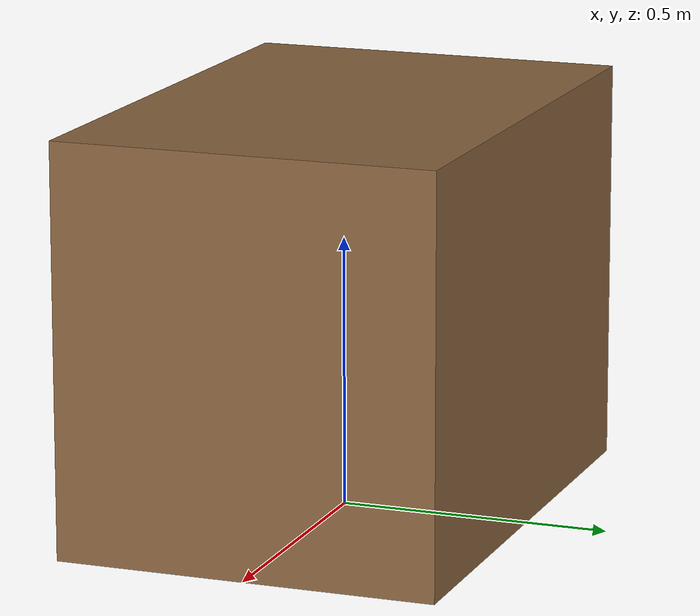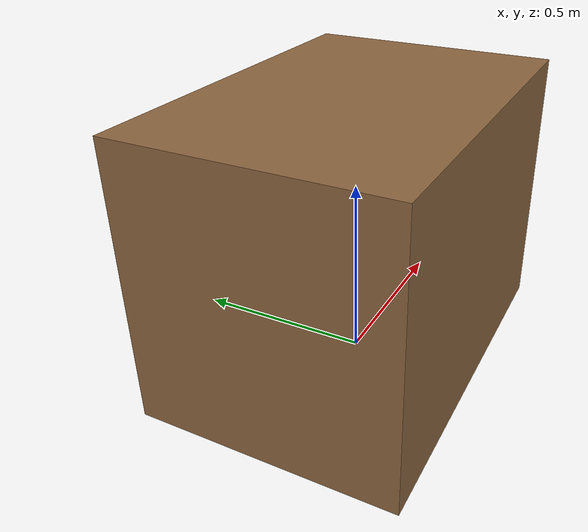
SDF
<?xml version="1.0" ?>
<sdf version="1.7">
  <model name="table">
    <static>true</static>
    <link name="link">
      <collision name="collision">
        <pose>0 0 0.375 0 0 0</pose>
        <geometry>
          <box>
            <size>1.0 0.7 0.75</size>
          </box>
        </geometry>
      </collision>
      <visual name="visual">
        <pose>0 0 0.375 0 0 0</pose>
        <geometry>
          <box>
            <size>1.0 0.7 0.75</size>
          </box>
        </geometry>
        <material>
          <ambient>0.55 0.40 0.25 1</ambient>
          <diffuse>0.55 0.40 0.25 1</diffuse>
        </material>
      </visual>
    </link>
  </model>
</sdf>
